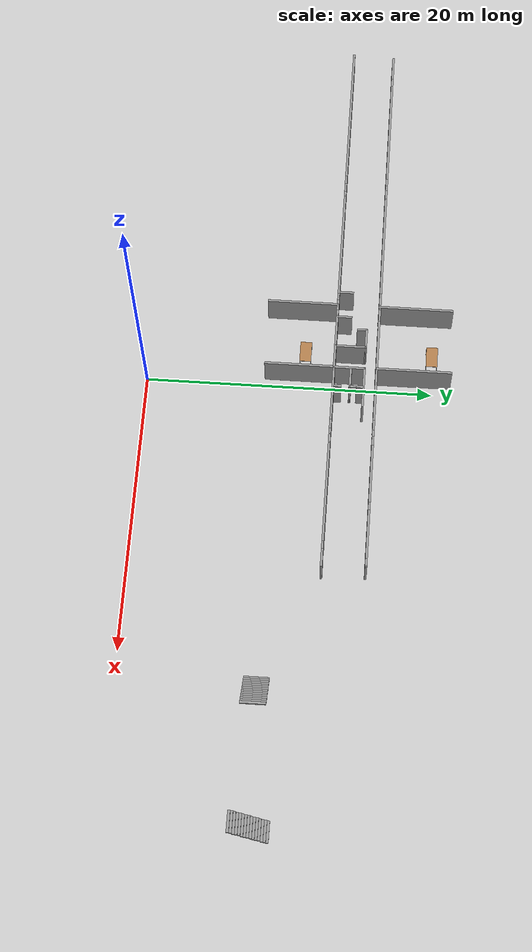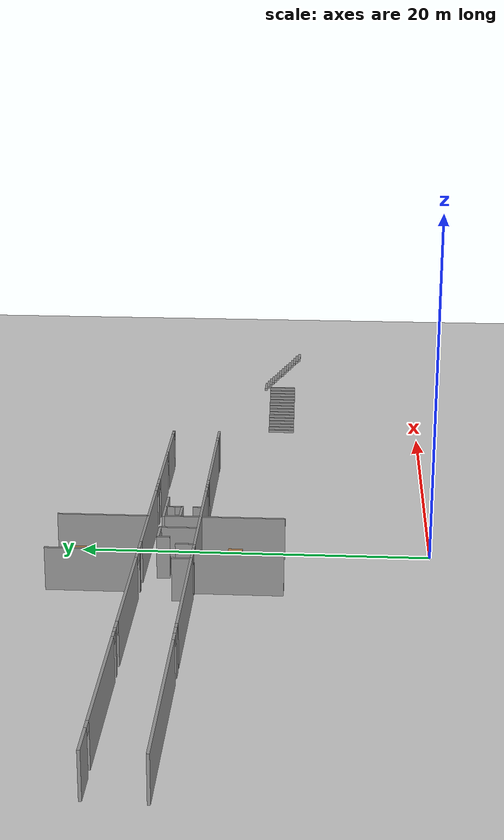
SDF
<sdf version="1.6">
 <world name="default">
  <model name="ground_plane">
   <static>1</static>
   <link name="link">
    <collision name="collision">
     <geometry><plane><normal>0 0 1</normal><size>100 100</size></plane></geometry>
     <surface><friction><ode><mu>100</mu><mu2>50</mu2></ode></friction></surface>
    </collision>
    <visual name="visual">
     <cast_shadows>0</cast_shadows>
     <geometry><plane><normal>0 0 1</normal><size>100 100</size></plane></geometry>
     <material>
      <script><uri>file://media/materials/scripts/gazebo.material</uri><name>Gazebo/Grey</name></script>
     </material>
    </visual>
   </link>
  </model>
  <model name="se1f1_fin.sdf">
   <pose>1.23175 -2.73358 0 0 -0 0</pose>
   <link name="Stairs_0">
    <visual name="Stairs_0_Visual_0">
     <pose>20.0688 12.0461 0.083333 0 -0 1.5708</pose>
     <geometry><box><size>1.71709 0.168037 0.166667</size></box></geometry>
     <material>
      <script><uri>file://media/materials/scripts/gazebo.material</uri><name>Gazebo/Grey</name></script>
      <ambient>1 1 1 1</ambient>
     </material>
     <meta><layer>0</layer></meta>
    </visual>
    <collision name="Stairs_0_Collision_0">
     <geometry><box><size>1.71709 0.168037 0.166667</size></box></geometry>
     <pose>20.0688 12.0461 0.083333 0 -0 1.5708</pose>
    </collision>
    <visual name="Stairs_0_Visual_1">
     <pose>20.2369 12.0461 0.25 0 -0 1.5708</pose>
     <geometry><box><size>1.71709 0.168037 0.166667</size></box></geometry>
     <material>
      <script><uri>file://media/materials/scripts/gazebo.material</uri><name>Gazebo/Grey</name></script>
      <ambient>1 1 1 1</ambient>
     </material>
     <meta><layer>0</layer></meta>
    </visual>
    <collision name="Stairs_0_Collision_1">
     <geometry><box><size>1.71709 0.168037 0.166667</size></box></geometry>
     <pose>20.2369 12.0461 0.25 0 -0 1.5708</pose>
    </collision>
    <visual name="Stairs_0_Visual_2">
     <pose>20.4049 12.0461 0.416667 0 -0 1.5708</pose>
     <geometry><box><size>1.71709 0.168037 0.166667</size></box></geometry>
     <material>
      <script><uri>file://media/materials/scripts/gazebo.material</uri><name>Gazebo/Grey</name></script>
      <ambient>1 1 1 1</ambient>
     </material>
     <meta><layer>0</layer></meta>
    </visual>
    <collision name="Stairs_0_Collision_2">
     <geometry><box><size>1.71709 0.168037 0.166667</size></box></geometry>
     <pose>20.4049 12.0461 0.416667 0 -0 1.5708</pose>
    </collision>
    <visual name="Stairs_0_Visual_3">
     <pose>20.5729 12.0461 0.583333 0 -0 1.5708</pose>
     <geometry><box><size>1.71709 0.168037 0.166667</size></box></geometry>
     <material>
      <script><uri>file://media/materials/scripts/gazebo.material</uri><name>Gazebo/Grey</name></script>
      <ambient>1 1 1 1</ambient>
     </material>
     <meta><layer>0</layer></meta>
    </visual>
    <collision name="Stairs_0_Collision_3">
     <geometry><box><size>1.71709 0.168037 0.166667</size></box></geometry>
     <pose>20.5729 12.0461 0.583333 0 -0 1.5708</pose>
    </collision>
    <visual name="Stairs_0_Visual_4">
     <pose>20.741 12.0461 0.75 0 -0 1.5708</pose>
     <geometry><box><size>1.71709 0.168037 0.166667</size></box></geometry>
     <material>
      <script><uri>file://media/materials/scripts/gazebo.material</uri><name>Gazebo/Grey</name></script>
      <ambient>1 1 1 1</ambient>
     </material>
     <meta><layer>0</layer></meta>
    </visual>
    <collision name="Stairs_0_Collision_4">
     <geometry><box><size>1.71709 0.168037 0.166667</size></box></geometry>
     <pose>20.741 12.0461 0.75 0 -0 1.5708</pose>
    </collision>
    <visual name="Stairs_0_Visual_5">
     <pose>20.909 12.0461 0.916667 0 -0 1.5708</pose>
     <geometry><box><size>1.71709 0.168037 0.166667</size></box></geometry>
     <material>
      <script><uri>file://media/materials/scripts/gazebo.material</uri><name>Gazebo/Grey</name></script>
      <ambient>1 1 1 1</ambient>
     </material>
     <meta><layer>0</layer></meta>
    </visual>
    <collision name="Stairs_0_Collision_5">
     <geometry><box><size>1.71709 0.168037 0.166667</size></box></geometry>
     <pose>20.909 12.0461 0.916667 0 -0 1.5708</pose>
    </collision>
    <visual name="Stairs_0_Visual_6">
     <pose>21.077 12.0461 1.08333 0 -0 1.5708</pose>
     <geometry><box><size>1.71709 0.168037 0.166667</size></box></geometry>
     <material>
      <script><uri>file://media/materials/scripts/gazebo.material</uri><name>Gazebo/Grey</name></script>
      <ambient>1 1 1 1</ambient>
     </material>
     <meta><layer>0</layer></meta>
    </visual>
    <collision name="Stairs_0_Collision_6">
     <geometry><box><size>1.71709 0.168037 0.166667</size></box></geometry>
     <pose>21.077 12.0461 1.08333 0 -0 1.5708</pose>
    </collision>
    <visual name="Stairs_0_Visual_7">
     <pose>21.2451 12.0461 1.25 0 -0 1.5708</pose>
     <geometry><box><size>1.71709 0.168037 0.166667</size></box></geometry>
     <material>
      <script><uri>file://media/materials/scripts/gazebo.material</uri><name>Gazebo/Grey</name></script>
      <ambient>1 1 1 1</ambient>
     </material>
     <meta><layer>0</layer></meta>
    </visual>
    <collision name="Stairs_0_Collision_7">
     <geometry><box><size>1.71709 0.168037 0.166667</size></box></geometry>
     <pose>21.2451 12.0461 1.25 0 -0 1.5708</pose>
    </collision>
    <visual name="Stairs_0_Visual_8">
     <pose>21.4131 12.0461 1.41667 0 -0 1.5708</pose>
     <geometry><box><size>1.71709 0.168037 0.166667</size></box></geometry>
     <material>
      <script><uri>file://media/materials/scripts/gazebo.material</uri><name>Gazebo/Grey</name></script>
      <ambient>1 1 1 1</ambient>
     </material>
     <meta><layer>0</layer></meta>
    </visual>
    <collision name="Stairs_0_Collision_8">
     <geometry><box><size>1.71709 0.168037 0.166667</size></box></geometry>
     <pose>21.4131 12.0461 1.41667 0 -0 1.5708</pose>
    </collision>
    <visual name="Stairs_0_Visual_9">
     <pose>21.5812 12.0461 1.58333 0 -0 1.5708</pose>
     <geometry><box><size>1.71709 0.168037 0.166667</size></box></geometry>
     <material>
      <script><uri>file://media/materials/scripts/gazebo.material</uri><name>Gazebo/Grey</name></script>
      <ambient>1 1 1 1</ambient>
     </material>
     <meta><layer>0</layer></meta>
    </visual>
    <collision name="Stairs_0_Collision_9">
     <geometry><box><size>1.71709 0.168037 0.166667</size></box></geometry>
     <pose>21.5812 12.0461 1.58333 0 -0 1.5708</pose>
    </collision>
    <visual name="Stairs_0_Visual_10">
     <pose>21.7492 12.0461 1.75 0 -0 1.5708</pose>
     <geometry><box><size>1.71709 0.168037 0.166667</size></box></geometry>
     <material>
      <script><uri>file://media/materials/scripts/gazebo.material</uri><name>Gazebo/Grey</name></script>
      <ambient>1 1 1 1</ambient>
     </material>
     <meta><layer>0</layer></meta>
    </visual>
    <collision name="Stairs_0_Collision_10">
     <geometry><box><size>1.71709 0.168037 0.166667</size></box></geometry>
     <pose>21.7492 12.0461 1.75 0 -0 1.5708</pose>
    </collision>
    <visual name="Stairs_0_Visual_11">
     <pose>21.9172 12.0461 1.91667 0 -0 1.5708</pose>
     <geometry><box><size>1.71709 0.168037 0.166667</size></box></geometry>
     <material>
      <script><uri>file://media/materials/scripts/gazebo.material</uri><name>Gazebo/Grey</name></script>
      <ambient>1 1 1 1</ambient>
     </material>
     <meta><layer>0</layer></meta>
    </visual>
    <collision name="Stairs_0_Collision_11">
     <geometry><box><size>1.71709 0.168037 0.166667</size></box></geometry>
     <pose>21.9172 12.0461 1.91667 0 -0 1.5708</pose>
    </collision>
    <visual name="Stairs_0_Visual_12">
     <pose>22.0853 12.0461 2.08333 0 -0 1.5708</pose>
     <geometry><box><size>1.71709 0.168037 0.166667</size></box></geometry>
     <material>
      <script><uri>file://media/materials/scripts/gazebo.material</uri><name>Gazebo/Grey</name></script>
      <ambient>1 1 1 1</ambient>
     </material>
     <meta><layer>0</layer></meta>
    </visual>
    <collision name="Stairs_0_Collision_12">
     <geometry><box><size>1.71709 0.168037 0.166667</size></box></geometry>
     <pose>22.0853 12.0461 2.08333 0 -0 1.5708</pose>
    </collision>
    <visual name="Stairs_0_Visual_13">
     <pose>22.2533 12.0461 2.25 0 -0 1.5708</pose>
     <geometry><box><size>1.71709 0.168037 0.166667</size></box></geometry>
     <material>
      <script><uri>file://media/materials/scripts/gazebo.material</uri><name>Gazebo/Grey</name></script>
      <ambient>1 1 1 1</ambient>
     </material>
     <meta><layer>0</layer></meta>
    </visual>
    <collision name="Stairs_0_Collision_13">
     <geometry><box><size>1.71709 0.168037 0.166667</size></box></geometry>
     <pose>22.2533 12.0461 2.25 0 -0 1.5708</pose>
    </collision>
    <visual name="Stairs_0_Visual_14">
     <pose>22.4213 12.0461 2.41667 0 -0 1.5708</pose>
     <geometry><box><size>1.71709 0.168037 0.166667</size></box></geometry>
     <material>
      <script><uri>file://media/materials/scripts/gazebo.material</uri><name>Gazebo/Grey</name></script>
      <ambient>1 1 1 1</ambient>
     </material>
     <meta><layer>0</layer></meta>
    </visual>
    <collision name="Stairs_0_Collision_14">
     <geometry><box><size>1.71709 0.168037 0.166667</size></box></geometry>
     <pose>22.4213 12.0461 2.41667 0 -0 1.5708</pose>
    </collision>
   </link>
   <link name="Stairs_1">
    <visual name="Stairs_1_Visual_0">
     <pose>30.095 13.5256 0.083333 0 -0 0</pose>
     <geometry><box><size>1.41976 0.173867 0.166667</size></box></geometry>
     <material>
      <script><uri>file://media/materials/scripts/gazebo.material</uri><name>Gazebo/Grey</name></script>
      <ambient>1 1 1 1</ambient>
     </material>
     <meta><layer>0</layer></meta>
    </visual>
    <collision name="Stairs_1_Collision_0">
     <geometry><box><size>1.41976 0.173867 0.166667</size></box></geometry>
     <pose>30.095 13.5256 0.083333 0 -0 0</pose>
    </collision>
    <visual name="Stairs_1_Visual_1">
     <pose>30.095 13.3517 0.25 0 -0 0</pose>
     <geometry><box><size>1.41976 0.173867 0.166667</size></box></geometry>
     <material>
      <script><uri>file://media/materials/scripts/gazebo.material</uri><name>Gazebo/Grey</name></script>
      <ambient>1 1 1 1</ambient>
     </material>
     <meta><layer>0</layer></meta>
    </visual>
    <collision name="Stairs_1_Collision_1">
     <geometry><box><size>1.41976 0.173867 0.166667</size></box></geometry>
     <pose>30.095 13.3517 0.25 0 -0 0</pose>
    </collision>
    <visual name="Stairs_1_Visual_2">
     <pose>30.095 13.1778 0.416667 0 -0 0</pose>
     <geometry><box><size>1.41976 0.173867 0.166667</size></box></geometry>
     <material>
      <script><uri>file://media/materials/scripts/gazebo.material</uri><name>Gazebo/Grey</name></script>
      <ambient>1 1 1 1</ambient>
     </material>
     <meta><layer>0</layer></meta>
    </visual>
    <collision name="Stairs_1_Collision_2">
     <geometry><box><size>1.41976 0.173867 0.166667</size></box></geometry>
     <pose>30.095 13.1778 0.416667 0 -0 0</pose>
    </collision>
    <visual name="Stairs_1_Visual_3">
     <pose>30.095 13.004 0.583333 0 -0 0</pose>
     <geometry><box><size>1.41976 0.173867 0.166667</size></box></geometry>
     <material>
      <script><uri>file://media/materials/scripts/gazebo.material</uri><name>Gazebo/Grey</name></script>
      <ambient>1 1 1 1</ambient>
     </material>
     <meta><layer>0</layer></meta>
    </visual>
    <collision name="Stairs_1_Collision_3">
     <geometry><box><size>1.41976 0.173867 0.166667</size></box></geometry>
     <pose>30.095 13.004 0.583333 0 -0 0</pose>
    </collision>
    <visual name="Stairs_1_Visual_4">
     <pose>30.095 12.8301 0.75 0 -0 0</pose>
     <geometry><box><size>1.41976 0.173867 0.166667</size></box></geometry>
     <material>
      <script><uri>file://media/materials/scripts/gazebo.material</uri><name>Gazebo/Grey</name></script>
      <ambient>1 1 1 1</ambient>
     </material>
     <meta><layer>0</layer></meta>
    </visual>
    <collision name="Stairs_1_Collision_4">
     <geometry><box><size>1.41976 0.173867 0.166667</size></box></geometry>
     <pose>30.095 12.8301 0.75 0 -0 0</pose>
    </collision>
    <visual name="Stairs_1_Visual_5">
     <pose>30.095 12.6562 0.916667 0 -0 0</pose>
     <geometry><box><size>1.41976 0.173867 0.166667</size></box></geometry>
     <material>
      <script><uri>file://media/materials/scripts/gazebo.material</uri><name>Gazebo/Grey</name></script>
      <ambient>1 1 1 1</ambient>
     </material>
     <meta><layer>0</layer></meta>
    </visual>
    <collision name="Stairs_1_Collision_5">
     <geometry><box><size>1.41976 0.173867 0.166667</size></box></geometry>
     <pose>30.095 12.6562 0.916667 0 -0 0</pose>
    </collision>
    <visual name="Stairs_1_Visual_6">
     <pose>30.095 12.4824 1.08333 0 -0 0</pose>
     <geometry><box><size>1.41976 0.173867 0.166667</size></box></geometry>
     <material>
      <script><uri>file://media/materials/scripts/gazebo.material</uri><name>Gazebo/Grey</name></script>
      <ambient>1 1 1 1</ambient>
     </material>
     <meta><layer>0</layer></meta>
    </visual>
    <collision name="Stairs_1_Collision_6">
     <geometry><box><size>1.41976 0.173867 0.166667</size></box></geometry>
     <pose>30.095 12.4824 1.08333 0 -0 0</pose>
    </collision>
    <visual name="Stairs_1_Visual_7">
     <pose>30.095 12.3085 1.25 0 -0 0</pose>
     <geometry><box><size>1.41976 0.173867 0.166667</size></box></geometry>
     <material>
      <script><uri>file://media/materials/scripts/gazebo.material</uri><name>Gazebo/Grey</name></script>
      <ambient>1 1 1 1</ambient>
     </material>
     <meta><layer>0</layer></meta>
    </visual>
    <collision name="Stairs_1_Collision_7">
     <geometry><box><size>1.41976 0.173867 0.166667</size></box></geometry>
     <pose>30.095 12.3085 1.25 0 -0 0</pose>
    </collision>
    <visual name="Stairs_1_Visual_8">
     <pose>30.095 12.1346 1.41667 0 -0 0</pose>
     <geometry><box><size>1.41976 0.173867 0.166667</size></box></geometry>
     <material>
      <script><uri>file://media/materials/scripts/gazebo.material</uri><name>Gazebo/Grey</name></script>
      <ambient>1 1 1 1</ambient>
     </material>
     <meta><layer>0</layer></meta>
    </visual>
    <collision name="Stairs_1_Collision_8">
     <geometry><box><size>1.41976 0.173867 0.166667</size></box></geometry>
     <pose>30.095 12.1346 1.41667 0 -0 0</pose>
    </collision>
    <visual name="Stairs_1_Visual_9">
     <pose>30.095 11.9608 1.58333 0 -0 0</pose>
     <geometry><box><size>1.41976 0.173867 0.166667</size></box></geometry>
     <material>
      <script><uri>file://media/materials/scripts/gazebo.material</uri><name>Gazebo/Grey</name></script>
      <ambient>1 1 1 1</ambient>
     </material>
     <meta><layer>0</layer></meta>
    </visual>
    <collision name="Stairs_1_Collision_9">
     <geometry><box><size>1.41976 0.173867 0.166667</size></box></geometry>
     <pose>30.095 11.9608 1.58333 0 -0 0</pose>
    </collision>
    <visual name="Stairs_1_Visual_10">
     <pose>30.095 11.7869 1.75 0 -0 0</pose>
     <geometry><box><size>1.41976 0.173867 0.166667</size></box></geometry>
     <material>
      <script><uri>file://media/materials/scripts/gazebo.material</uri><name>Gazebo/Grey</name></script>
      <ambient>1 1 1 1</ambient>
     </material>
     <meta><layer>0</layer></meta>
    </visual>
    <collision name="Stairs_1_Collision_10">
     <geometry><box><size>1.41976 0.173867 0.166667</size></box></geometry>
     <pose>30.095 11.7869 1.75 0 -0 0</pose>
    </collision>
    <visual name="Stairs_1_Visual_11">
     <pose>30.095 11.613 1.91667 0 -0 0</pose>
     <geometry><box><size>1.41976 0.173867 0.166667</size></box></geometry>
     <material>
      <script><uri>file://media/materials/scripts/gazebo.material</uri><name>Gazebo/Grey</name></script>
      <ambient>1 1 1 1</ambient>
     </material>
     <meta><layer>0</layer></meta>
    </visual>
    <collision name="Stairs_1_Collision_11">
     <geometry><box><size>1.41976 0.173867 0.166667</size></box></geometry>
     <pose>30.095 11.613 1.91667 0 -0 0</pose>
    </collision>
    <visual name="Stairs_1_Visual_12">
     <pose>30.095 11.4391 2.08333 0 -0 0</pose>
     <geometry><box><size>1.41976 0.173867 0.166667</size></box></geometry>
     <material>
      <script><uri>file://media/materials/scripts/gazebo.material</uri><name>Gazebo/Grey</name></script>
      <ambient>1 1 1 1</ambient>
     </material>
     <meta><layer>0</layer></meta>
    </visual>
    <collision name="Stairs_1_Collision_12">
     <geometry><box><size>1.41976 0.173867 0.166667</size></box></geometry>
     <pose>30.095 11.4391 2.08333 0 -0 0</pose>
    </collision>
    <visual name="Stairs_1_Visual_13">
     <pose>30.095 11.2653 2.25 0 -0 0</pose>
     <geometry><box><size>1.41976 0.173867 0.166667</size></box></geometry>
     <material>
      <script><uri>file://media/materials/scripts/gazebo.material</uri><name>Gazebo/Grey</name></script>
      <ambient>1 1 1 1</ambient>
     </material>
     <meta><layer>0</layer></meta>
    </visual>
    <collision name="Stairs_1_Collision_13">
     <geometry><box><size>1.41976 0.173867 0.166667</size></box></geometry>
     <pose>30.095 11.2653 2.25 0 -0 0</pose>
    </collision>
    <visual name="Stairs_1_Visual_14">
     <pose>30.095 11.0914 2.41667 0 -0 0</pose>
     <geometry><box><size>1.41976 0.173867 0.166667</size></box></geometry>
     <material>
      <script><uri>file://media/materials/scripts/gazebo.material</uri><name>Gazebo/Grey</name></script>
      <ambient>1 1 1 1</ambient>
     </material>
     <meta><layer>0</layer></meta>
    </visual>
    <collision name="Stairs_1_Collision_14">
     <geometry><box><size>1.41976 0.173867 0.166667</size></box></geometry>
     <pose>30.095 11.0914 2.41667 0 -0 0</pose>
    </collision>
   </link>
   <link name="Wall_103">
    <collision name="Wall_103_Collision">
     <geometry><box><size>5 0.15 2.5</size></box></geometry>
     <pose>0 0 1.25 0 -0 0</pose>
    </collision>
    <visual name="Wall_103_Visual">
     <pose>0 0 1.25 0 -0 0</pose>
     <geometry><box><size>5 0.15 2.5</size></box></geometry>
     <material>
      <script><uri>file://media/materials/scripts/gazebo.material</uri><name>Gazebo/Grey</name></script>
      <ambient>1 1 1 1</ambient>
     </material>
     <meta><layer>0</layer></meta>
    </visual>
    <pose>-6.75659 13.3935 0 0 -0 1.5708</pose>
   </link>
   <link name="Wall_106">
    <collision name="Wall_106_Collision">
     <geometry><box><size>4.75 0.15 2.5</size></box></geometry>
     <pose>0 0 1.25 0 -0 0</pose>
    </collision>
    <visual name="Wall_106_Visual">
     <pose>0 0 1.25 0 -0 0</pose>
     <geometry><box><size>4.75 0.15 2.5</size></box></geometry>
     <material>
      <script><uri>file://media/materials/scripts/gazebo.material</uri><name>Gazebo/Grey</name></script>
      <ambient>1 1 1 1</ambient>
     </material>
     <meta><layer>0</layer></meta>
    </visual>
    <pose>-1.85938 13.3735 0 0 -0 1.5708</pose>
   </link>
   <link name="Wall_112">
    <pose>-7.6182 18.7939 0 0 -0 0</pose>
    <visual name="Wall_112_Visual_0">
     <pose>-19.4252 0 1.25 0 -0 0</pose>
     <geometry><box><size>1.89964 0.15 2.5</size></box></geometry>
     <material>
      <script><uri>file://media/materials/scripts/gazebo.material</uri><name>Gazebo/Grey</name></script>
      <ambient>1 1 1 1</ambient>
     </material>
     <meta><layer>0</layer></meta>
    </visual>
    <collision name="Wall_112_Collision_0">
     <geometry><box><size>1.89964 0.15 2.5</size></box></geometry>
     <pose>-19.4252 0 1.25 0 -0 0</pose>
    </collision>
    <visual name="Wall_112_Visual_1">
     <pose>-13.7447 0 1.25 0 -0 0</pose>
     <geometry><box><size>8.15111 0.15 2.5</size></box></geometry>
     <material>
      <script><uri>file://media/materials/scripts/gazebo.material</uri><name>Gazebo/Grey</name></script>
      <ambient>1 1 1 1</ambient>
     </material>
     <meta><layer>0</layer></meta>
    </visual>
    <collision name="Wall_112_Collision_1">
     <geometry><box><size>8.15111 0.15 2.5</size></box></geometry>
     <pose>-13.7447 0 1.25 0 -0 0</pose>
    </collision>
    <visual name="Wall_112_Visual_2">
     <pose>-8.90866 0 1.25 0 -0 0</pose>
     <geometry><box><size>0.38552 0.15 2.5</size></box></geometry>
     <material>
      <script><uri>file://media/materials/scripts/gazebo.material</uri><name>Gazebo/Grey</name></script>
      <ambient>1 1 1 1</ambient>
     </material>
     <meta><layer>0</layer></meta>
    </visual>
    <collision name="Wall_112_Collision_2">
     <geometry><box><size>0.38552 0.15 2.5</size></box></geometry>
     <pose>-8.90866 0 1.25 0 -0 0</pose>
    </collision>
    <visual name="Wall_112_Visual_3">
     <pose>-4.07266 0 1.25 0 -0 0</pose>
     <geometry><box><size>7.83629 0.15 2.5</size></box></geometry>
     <material>
      <script><uri>file://media/materials/scripts/gazebo.material</uri><name>Gazebo/Grey</name></script>
      <ambient>1 1 1 1</ambient>
     </material>
     <meta><layer>0</layer></meta>
    </visual>
    <collision name="Wall_112_Collision_3">
     <geometry><box><size>7.83629 0.15 2.5</size></box></geometry>
     <pose>-4.07266 0 1.25 0 -0 0</pose>
    </collision>
    <visual name="Wall_112_Visual_4">
     <pose>0.933869 0 1.25 0 -0 0</pose>
     <geometry><box><size>0.376774 0.15 2.5</size></box></geometry>
     <material>
      <script><uri>file://media/materials/scripts/gazebo.material</uri><name>Gazebo/Grey</name></script>
      <ambient>1 1 1 1</ambient>
     </material>
     <meta><layer>0</layer></meta>
    </visual>
    <collision name="Wall_112_Collision_4">
     <geometry><box><size>0.376774 0.15 2.5</size></box></geometry>
     <pose>0.933869 0 1.25 0 -0 0</pose>
    </collision>
    <visual name="Wall_112_Visual_5">
     <pose>5.85295 0 1.25 0 -0 0</pose>
     <geometry><box><size>7.66139 0.15 2.5</size></box></geometry>
     <material>
      <script><uri>file://media/materials/scripts/gazebo.material</uri><name>Gazebo/Grey</name></script>
      <ambient>1 1 1 1</ambient>
     </material>
     <meta><layer>0</layer></meta>
    </visual>
    <collision name="Wall_112_Collision_5">
     <geometry><box><size>7.66139 0.15 2.5</size></box></geometry>
     <pose>5.85295 0 1.25 0 -0 0</pose>
    </collision>
    <visual name="Wall_112_Visual_6">
     <pose>10.654 0 1.25 0 -0 0</pose>
     <geometry><box><size>0.45548 0.15 2.5</size></box></geometry>
     <material>
      <script><uri>file://media/materials/scripts/gazebo.material</uri><name>Gazebo/Grey</name></script>
      <ambient>1 1 1 1</ambient>
     </material>
     <meta><layer>0</layer></meta>
    </visual>
    <collision name="Wall_112_Collision_6">
     <geometry><box><size>0.45548 0.15 2.5</size></box></geometry>
     <pose>10.654 0 1.25 0 -0 0</pose>
    </collision>
    <visual name="Wall_112_Visual_7">
     <pose>13.6666 0 1.25 0 -0 0</pose>
     <geometry><box><size>4.18961 0.15 2.5</size></box></geometry>
     <material>
      <script><uri>file://media/materials/scripts/gazebo.material</uri><name>Gazebo/Grey</name></script>
      <ambient>1 1 1 1</ambient>
     </material>
     <meta><layer>0</layer></meta>
    </visual>
    <collision name="Wall_112_Collision_7">
     <geometry><box><size>4.18961 0.15 2.5</size></box></geometry>
     <pose>13.6666 0 1.25 0 -0 0</pose>
    </collision>
    <visual name="Wall_112_Visual_8">
     <pose>18.0435 0 1.25 0 -0 0</pose>
     <geometry><box><size>3.46377 0.15 2.5</size></box></geometry>
     <material>
      <script><uri>file://media/materials/scripts/gazebo.material</uri><name>Gazebo/Grey</name></script>
      <ambient>1 1 1 1</ambient>
     </material>
     <meta><layer>0</layer></meta>
    </visual>
    <collision name="Wall_112_Collision_8">
     <geometry><box><size>3.46377 0.15 2.5</size></box></geometry>
     <pose>18.0435 0 1.25 0 -0 0</pose>
    </collision>
    <visual name="Wall_112_Visual_9">
     <pose>20.3328 0 1.25 0 -0 0</pose>
     <geometry><box><size>0.084374 0.15 2.5</size></box></geometry>
     <material>
      <script><uri>file://media/materials/scripts/gazebo.material</uri><name>Gazebo/Grey</name></script>
      <ambient>1 1 1 1</ambient>
     </material>
     <meta><layer>0</layer></meta>
    </visual>
    <collision name="Wall_112_Collision_9">
     <geometry><box><size>0.084374 0.15 2.5</size></box></geometry>
     <pose>20.3328 0 1.25 0 -0 0</pose>
    </collision>
    <visual name="Wall_112_Visual_10">
     <pose>-18.1478 0 2.25 0 -0 0</pose>
     <geometry><box><size>0.655139 0.15 0.5</size></box></geometry>
     <material>
      <script><uri>file://media/materials/scripts/gazebo.material</uri><name>Gazebo/Grey</name></script>
      <ambient>1 1 1 1</ambient>
     </material>
     <meta><layer>0</layer></meta>
    </visual>
    <collision name="Wall_112_Collision_10">
     <geometry><box><size>0.655139 0.15 0.5</size></box></geometry>
     <pose>-18.1478 0 2.25 0 -0 0</pose>
    </collision>
    <visual name="Wall_112_Visual_11">
     <pose>-9.38527 0 2.25 0 -0 0</pose>
     <geometry><box><size>0.567689 0.15 0.5</size></box></geometry>
     <material>
      <script><uri>file://media/materials/scripts/gazebo.material</uri><name>Gazebo/Grey</name></script>
      <ambient>1 1 1 1</ambient>
     </material>
     <meta><layer>0</layer></meta>
    </visual>
    <collision name="Wall_112_Collision_11">
     <geometry><box><size>0.567689 0.15 0.5</size></box></geometry>
     <pose>-9.38527 0 2.25 0 -0 0</pose>
    </collision>
    <visual name="Wall_112_Visual_12">
     <pose>-8.35335 0 2.25 0 -0 0</pose>
     <geometry><box><size>0.725099 0.15 0.5</size></box></geometry>
     <material>
      <script><uri>file://media/materials/scripts/gazebo.material</uri><name>Gazebo/Grey</name></script>
      <ambient>1 1 1 1</ambient>
     </material>
     <meta><layer>0</layer></meta>
    </visual>
    <collision name="Wall_112_Collision_12">
     <geometry><box><size>0.725099 0.15 0.5</size></box></geometry>
     <pose>-8.35335 0 2.25 0 -0 0</pose>
    </collision>
    <visual name="Wall_112_Visual_13">
     <pose>0.295482 0 2.25 0 -0 0</pose>
     <geometry><box><size>0.9 0.15 0.5</size></box></geometry>
     <material>
      <script><uri>file://media/materials/scripts/gazebo.material</uri><name>Gazebo/Grey</name></script>
      <ambient>1 1 1 1</ambient>
     </material>
     <meta><layer>0</layer></meta>
    </visual>
    <collision name="Wall_112_Collision_13">
     <geometry><box><size>0.9 0.15 0.5</size></box></geometry>
     <pose>0.295482 0 2.25 0 -0 0</pose>
    </collision>
    <visual name="Wall_112_Visual_14">
     <pose>1.57226 0 2.25 0 -0 0</pose>
     <geometry><box><size>0.9 0.15 0.5</size></box></geometry>
     <material>
      <script><uri>file://media/materials/scripts/gazebo.material</uri><name>Gazebo/Grey</name></script>
      <ambient>1 1 1 1</ambient>
     </material>
     <meta><layer>0</layer></meta>
    </visual>
    <collision name="Wall_112_Collision_14">
     <geometry><box><size>0.9 0.15 0.5</size></box></geometry>
     <pose>1.57226 0 2.25 0 -0 0</pose>
    </collision>
    <visual name="Wall_112_Visual_15">
     <pose>10.0549 0 2.25 0 -0 0</pose>
     <geometry><box><size>0.742589 0.15 0.5</size></box></geometry>
     <material>
      <script><uri>file://media/materials/scripts/gazebo.material</uri><name>Gazebo/Grey</name></script>
      <ambient>1 1 1 1</ambient>
     </material>
     <meta><layer>0</layer></meta>
    </visual>
    <collision name="Wall_112_Collision_15">
     <geometry><box><size>0.742589 0.15 0.5</size></box></geometry>
     <pose>10.0549 0 2.25 0 -0 0</pose>
    </collision>
    <visual name="Wall_112_Visual_16">
     <pose>11.2268 0 2.25 0 -0 0</pose>
     <geometry><box><size>0.690119 0.15 0.5</size></box></geometry>
     <material>
      <script><uri>file://media/materials/scripts/gazebo.material</uri><name>Gazebo/Grey</name></script>
      <ambient>1 1 1 1</ambient>
     </material>
     <meta><layer>0</layer></meta>
    </visual>
    <collision name="Wall_112_Collision_16">
     <geometry><box><size>0.690119 0.15 0.5</size></box></geometry>
     <pose>11.2268 0 2.25 0 -0 0</pose>
    </collision>
    <visual name="Wall_112_Visual_17">
     <pose>16.0365 0 2.25 0 -0 0</pose>
     <geometry><box><size>0.550199 0.15 0.5</size></box></geometry>
     <material>
      <script><uri>file://media/materials/scripts/gazebo.material</uri><name>Gazebo/Grey</name></script>
      <ambient>1 1 1 1</ambient>
     </material>
     <meta><layer>0</layer></meta>
    </visual>
    <collision name="Wall_112_Collision_17">
     <geometry><box><size>0.550199 0.15 0.5</size></box></geometry>
     <pose>16.0365 0 2.25 0 -0 0</pose>
    </collision>
    <visual name="Wall_112_Visual_18">
     <pose>20.033 0 2.25 0 -0 0</pose>
     <geometry><box><size>0.515219 0.15 0.5</size></box></geometry>
     <material>
      <script><uri>file://media/materials/scripts/gazebo.material</uri><name>Gazebo/Grey</name></script>
      <ambient>1 1 1 1</ambient>
     </material>
     <meta><layer>0</layer></meta>
    </visual>
    <collision name="Wall_112_Collision_18">
     <geometry><box><size>0.515219 0.15 0.5</size></box></geometry>
     <pose>20.033 0 2.25 0 -0 0</pose>
    </collision>
   </link>
   <link name="Wall_122">
    <collision name="Wall_122_Collision">
     <geometry><box><size>5.25 0.15 2.5</size></box></geometry>
     <pose>0 0 1.25 0 -0 0</pose>
    </collision>
    <visual name="Wall_122_Visual">
     <pose>0 0 1.25 0 -0 0</pose>
     <geometry><box><size>5.25 0.15 2.5</size></box></geometry>
     <material>
      <script><uri>file://media/materials/scripts/gazebo.material</uri><name>Gazebo/Grey</name></script>
      <ambient>1 1 1 1</ambient>
     </material>
     <meta><layer>0</layer></meta>
    </visual>
    <pose>-6.72817 21.3338 0 0 -0 1.5708</pose>
   </link>
   <link name="Wall_124">
    <collision name="Wall_124_Collision">
     <geometry><box><size>5.25 0.15 2.5</size></box></geometry>
     <pose>0 0 1.25 0 -0 0</pose>
    </collision>
    <visual name="Wall_124_Visual">
     <pose>0 0 1.25 0 -0 0</pose>
     <geometry><box><size>5.25 0.15 2.5</size></box></geometry>
     <material>
      <script><uri>file://media/materials/scripts/gazebo.material</uri><name>Gazebo/Grey</name></script>
      <ambient>1 1 1 1</ambient>
     </material>
     <meta><layer>0</layer></meta>
    </visual>
    <pose>-1.8808 21.3941 0 0 -0 1.5708</pose>
   </link>
   <link name="Wall_21">
    <pose>-7.59191 15.8321 0 0 -0 0</pose>
    <visual name="Wall_21_Visual_0">
     <pose>-15.16 0 1.25 0 -0 0</pose>
     <geometry><box><size>10.68 0.15 2.5</size></box></geometry>
     <material>
      <script><uri>file://media/materials/scripts/gazebo.material</uri><name>Gazebo/Grey</name></script>
      <ambient>1 1 1 1</ambient>
     </material>
     <meta><layer>0</layer></meta>
    </visual>
    <collision name="Wall_21_Collision_0">
     <geometry><box><size>10.68 0.15 2.5</size></box></geometry>
     <pose>-15.16 0 1.25 0 -0 0</pose>
    </collision>
    <visual name="Wall_21_Visual_1">
     <pose>-8.81042 0 1.25 0 -0 0</pose>
     <geometry><box><size>0.642534 0.15 2.5</size></box></geometry>
     <material>
      <script><uri>file://media/materials/scripts/gazebo.material</uri><name>Gazebo/Grey</name></script>
      <ambient>1 1 1 1</ambient>
     </material>
     <meta><layer>0</layer></meta>
    </visual>
    <collision name="Wall_21_Collision_1">
     <geometry><box><size>0.642534 0.15 2.5</size></box></geometry>
     <pose>-8.81042 0 1.25 0 -0 0</pose>
    </collision>
    <visual name="Wall_21_Visual_2">
     <pose>-4.06184 0 1.25 0 -0 0</pose>
     <geometry><box><size>8.03762 0.15 2.5</size></box></geometry>
     <material>
      <script><uri>file://media/materials/scripts/gazebo.material</uri><name>Gazebo/Grey</name></script>
      <ambient>1 1 1 1</ambient>
     </material>
     <meta><layer>0</layer></meta>
    </visual>
    <collision name="Wall_21_Collision_2">
     <geometry><box><size>8.03762 0.15 2.5</size></box></geometry>
     <pose>-4.06184 0 1.25 0 -0 0</pose>
    </collision>
    <visual name="Wall_21_Visual_3">
     <pose>0.87956 0 1.25 0 -0 0</pose>
     <geometry><box><size>0.771078 0.15 2.5</size></box></geometry>
     <material>
      <script><uri>file://media/materials/scripts/gazebo.material</uri><name>Gazebo/Grey</name></script>
      <ambient>1 1 1 1</ambient>
     </material>
     <meta><layer>0</layer></meta>
    </visual>
    <collision name="Wall_21_Collision_3">
     <geometry><box><size>0.771078 0.15 2.5</size></box></geometry>
     <pose>0.87956 0 1.25 0 -0 0</pose>
    </collision>
    <visual name="Wall_21_Visual_4">
     <pose>5.71888 0 1.25 0 -0 0</pose>
     <geometry><box><size>8.0603 0.15 2.5</size></box></geometry>
     <material>
      <script><uri>file://media/materials/scripts/gazebo.material</uri><name>Gazebo/Grey</name></script>
      <ambient>1 1 1 1</ambient>
     </material>
     <meta><layer>0</layer></meta>
    </visual>
    <collision name="Wall_21_Collision_4">
     <geometry><box><size>8.0603 0.15 2.5</size></box></geometry>
     <pose>5.71888 0 1.25 0 -0 0</pose>
    </collision>
    <visual name="Wall_21_Visual_5">
     <pose>10.6433 0 1.25 0 -0 0</pose>
     <geometry><box><size>0.427032 0.15 2.5</size></box></geometry>
     <material>
      <script><uri>file://media/materials/scripts/gazebo.material</uri><name>Gazebo/Grey</name></script>
      <ambient>1 1 1 1</ambient>
     </material>
     <meta><layer>0</layer></meta>
    </visual>
    <collision name="Wall_21_Collision_5">
     <geometry><box><size>0.427032 0.15 2.5</size></box></geometry>
     <pose>10.6433 0 1.25 0 -0 0</pose>
    </collision>
    <visual name="Wall_21_Visual_6">
     <pose>15.1074 0 1.25 0 -0 0</pose>
     <geometry><box><size>7.18509 0.15 2.5</size></box></geometry>
     <material>
      <script><uri>file://media/materials/scripts/gazebo.material</uri><name>Gazebo/Grey</name></script>
      <ambient>1 1 1 1</ambient>
     </material>
     <meta><layer>0</layer></meta>
    </visual>
    <collision name="Wall_21_Collision_6">
     <geometry><box><size>7.18509 0.15 2.5</size></box></geometry>
     <pose>15.1074 0 1.25 0 -0 0</pose>
    </collision>
    <visual name="Wall_21_Visual_7">
     <pose>19.8602 0 1.25 0 -0 0</pose>
     <geometry><box><size>1.27959 0.15 2.5</size></box></geometry>
     <material>
      <script><uri>file://media/materials/scripts/gazebo.material</uri><name>Gazebo/Grey</name></script>
      <ambient>1 1 1 1</ambient>
     </material>
     <meta><layer>0</layer></meta>
    </visual>
    <collision name="Wall_21_Collision_7">
     <geometry><box><size>1.27959 0.15 2.5</size></box></geometry>
     <pose>19.8602 0 1.25 0 -0 0</pose>
    </collision>
    <visual name="Wall_21_Visual_8">
     <pose>-9.47583 0 2.25 0 -0 0</pose>
     <geometry><box><size>0.68828 0.15 0.5</size></box></geometry>
     <material>
      <script><uri>file://media/materials/scripts/gazebo.material</uri><name>Gazebo/Grey</name></script>
      <ambient>1 1 1 1</ambient>
     </material>
     <meta><layer>0</layer></meta>
    </visual>
    <collision name="Wall_21_Collision_8">
     <geometry><box><size>0.68828 0.15 0.5</size></box></geometry>
     <pose>-9.47583 0 2.25 0 -0 0</pose>
    </collision>
    <visual name="Wall_21_Visual_9">
     <pose>-8.2849 0 2.25 0 -0 0</pose>
     <geometry><box><size>0.408507 0.15 0.5</size></box></geometry>
     <material>
      <script><uri>file://media/materials/scripts/gazebo.material</uri><name>Gazebo/Grey</name></script>
      <ambient>1 1 1 1</ambient>
     </material>
     <meta><layer>0</layer></meta>
    </visual>
    <collision name="Wall_21_Collision_9">
     <geometry><box><size>0.408507 0.15 0.5</size></box></geometry>
     <pose>-8.2849 0 2.25 0 -0 0</pose>
    </collision>
    <visual name="Wall_21_Visual_10">
     <pose>0.225495 0 2.25 0 -0 0</pose>
     <geometry><box><size>0.537051 0.15 0.5</size></box></geometry>
     <material>
      <script><uri>file://media/materials/scripts/gazebo.material</uri><name>Gazebo/Grey</name></script>
      <ambient>1 1 1 1</ambient>
     </material>
     <meta><layer>0</layer></meta>
    </visual>
    <collision name="Wall_21_Collision_10">
     <geometry><box><size>0.537051 0.15 0.5</size></box></geometry>
     <pose>0.225495 0 2.25 0 -0 0</pose>
    </collision>
    <visual name="Wall_21_Visual_11">
     <pose>1.47691 0 2.25 0 -0 0</pose>
     <geometry><box><size>0.423629 0.15 0.5</size></box></geometry>
     <material>
      <script><uri>file://media/materials/scripts/gazebo.material</uri><name>Gazebo/Grey</name></script>
      <ambient>1 1 1 1</ambient>
     </material>
     <meta><layer>0</layer></meta>
    </visual>
    <collision name="Wall_21_Collision_11">
     <geometry><box><size>0.423629 0.15 0.5</size></box></geometry>
     <pose>1.47691 0 2.25 0 -0 0</pose>
    </collision>
    <visual name="Wall_21_Visual_12">
     <pose>10.0894 0 2.25 0 -0 0</pose>
     <geometry><box><size>0.680718 0.15 0.5</size></box></geometry>
     <material>
      <script><uri>file://media/materials/scripts/gazebo.material</uri><name>Gazebo/Grey</name></script>
      <ambient>1 1 1 1</ambient>
     </material>
     <meta><layer>0</layer></meta>
    </visual>
    <collision name="Wall_21_Collision_12">
     <geometry><box><size>0.680718 0.15 0.5</size></box></geometry>
     <pose>10.0894 0 2.25 0 -0 0</pose>
    </collision>
    <visual name="Wall_21_Visual_13">
     <pose>11.1858 0 2.25 0 -0 0</pose>
     <geometry><box><size>0.658034 0.15 0.5</size></box></geometry>
     <material>
      <script><uri>file://media/materials/scripts/gazebo.material</uri><name>Gazebo/Grey</name></script>
      <ambient>1 1 1 1</ambient>
     </material>
     <meta><layer>0</layer></meta>
    </visual>
    <collision name="Wall_21_Collision_13">
     <geometry><box><size>0.658034 0.15 0.5</size></box></geometry>
     <pose>11.1858 0 2.25 0 -0 0</pose>
    </collision>
    <visual name="Wall_21_Visual_14">
     <pose>18.9602 0 2.25 0 -0 0</pose>
     <geometry><box><size>0.5205 0.15 0.5</size></box></geometry>
     <material>
      <script><uri>file://media/materials/scripts/gazebo.material</uri><name>Gazebo/Grey</name></script>
      <ambient>1 1 1 1</ambient>
     </material>
     <meta><layer>0</layer></meta>
    </visual>
    <collision name="Wall_21_Collision_14">
     <geometry><box><size>0.5205 0.15 0.5</size></box></geometry>
     <pose>18.9602 0 2.25 0 -0 0</pose>
    </collision>
   </link>
   <link name="Wall_27">
    <collision name="Wall_27_Collision">
     <geometry><box><size>0.75 0.15 2.5</size></box></geometry>
     <pose>0 0 1.25 0 -0 0</pose>
    </collision>
    <visual name="Wall_27_Visual">
     <pose>0 0 1.25 0 -0 0</pose>
     <geometry><box><size>0.75 0.15 2.5</size></box></geometry>
     <material>
      <script><uri>file://media/materials/scripts/gazebo.material</uri><name>Gazebo/Grey</name></script>
      <ambient>1 1 1 1</ambient>
     </material>
     <meta><layer>0</layer></meta>
    </visual>
    <pose>-4.84059 17.6493 0 0 -0 1.5708</pose>
   </link>
   <link name="Wall_29">
    <collision name="Wall_29_Collision">
     <geometry><box><size>1.5 0.15 2.5</size></box></geometry>
     <pose>0 0 1.25 0 -0 0</pose>
    </collision>
    <visual name="Wall_29_Visual">
     <pose>0 0 1.25 0 -0 0</pose>
     <geometry><box><size>1.5 0.15 2.5</size></box></geometry>
     <material>
      <script><uri>file://media/materials/scripts/gazebo.material</uri><name>Gazebo/Grey</name></script>
      <ambient>1 1 1 1</ambient>
     </material>
     <meta><layer>0</layer></meta>
    </visual>
    <pose>-4.16559 17.9493 0 0 -0 0</pose>
   </link>
   <link name="Wall_30">
    <collision name="Wall_30_Collision">
     <geometry><box><size>2.25 0.15 2.5</size></box></geometry>
     <pose>0 0 1.25 0 -0 0</pose>
    </collision>
    <visual name="Wall_30_Visual">
     <pose>0 0 1.25 0 -0 0</pose>
     <geometry><box><size>2.25 0.15 2.5</size></box></geometry>
     <material>
      <script><uri>file://media/materials/scripts/gazebo.material</uri><name>Gazebo/Grey</name></script>
      <ambient>1 1 1 1</ambient>
     </material>
     <meta><layer>0</layer></meta>
    </visual>
    <pose>-3.49059 16.8993 0 0 0 -1.5708</pose>
   </link>
   <link name="Wall_33">
    <collision name="Wall_33_Collision">
     <geometry><box><size>3 0.15 2.5</size></box></geometry>
     <pose>0 0 1.25 0 -0 0</pose>
    </collision>
    <visual name="Wall_33_Visual">
     <pose>0 0 1.25 0 -0 0</pose>
     <geometry><box><size>3 0.15 2.5</size></box></geometry>
     <material>
      <script><uri>file://media/materials/scripts/gazebo.material</uri><name>Gazebo/Grey</name></script>
      <ambient>1 1 1 1</ambient>
     </material>
     <meta><layer>0</layer></meta>
    </visual>
    <pose>-0.413543 17.9493 0 0 -0 3.14159</pose>
   </link>
   <link name="Wall_34">
    <collision name="Wall_34_Collision">
     <geometry><box><size>2.25 0.15 2.5</size></box></geometry>
     <pose>0 0 1.25 0 -0 0</pose>
    </collision>
    <visual name="Wall_34_Visual">
     <pose>0 0 1.25 0 -0 0</pose>
     <geometry><box><size>2.25 0.15 2.5</size></box></geometry>
     <material>
      <script><uri>file://media/materials/scripts/gazebo.material</uri><name>Gazebo/Grey</name></script>
      <ambient>1 1 1 1</ambient>
     </material>
     <meta><layer>0</layer></meta>
    </visual>
    <pose>-1.83854 16.8993 0 0 0 -1.5708</pose>
   </link>
   <link name="Wall_43">
    <pose>-0.398353 17.4297 0 0 0 -1.5708</pose>
    <visual name="Wall_43_Visual_0">
     <pose>-0.253497 0 1.25 0 -0 0</pose>
     <geometry><box><size>0.493006 0.15 2.5</size></box></geometry>
     <material>
      <script><uri>file://media/materials/scripts/gazebo.material</uri><name>Gazebo/Grey</name></script>
      <ambient>1 1 1 1</ambient>
     </material>
     <meta><layer>0</layer></meta>
    </visual>
    <collision name="Wall_43_Collision_0">
     <geometry><box><size>0.493006 0.15 2.5</size></box></geometry>
     <pose>-0.253497 0 1.25 0 -0 0</pose>
    </collision>
    <visual name="Wall_43_Visual_1">
     <pose>0.450756 0 1.25 0 -0 0</pose>
     <geometry><box><size>0.098488 0.15 2.5</size></box></geometry>
     <material>
      <script><uri>file://media/materials/scripts/gazebo.material</uri><name>Gazebo/Grey</name></script>
      <ambient>1 1 1 1</ambient>
     </material>
     <meta><layer>0</layer></meta>
    </visual>
    <collision name="Wall_43_Collision_1">
     <geometry><box><size>0.098488 0.15 2.5</size></box></geometry>
     <pose>0.450756 0 1.25 0 -0 0</pose>
    </collision>
    <visual name="Wall_43_Visual_2">
     <pose>0.197259 0 2.25 0 -0 0</pose>
     <geometry><box><size>0.408507 0.15 0.5</size></box></geometry>
     <material>
      <script><uri>file://media/materials/scripts/gazebo.material</uri><name>Gazebo/Grey</name></script>
      <ambient>1 1 1 1</ambient>
     </material>
     <meta><layer>0</layer></meta>
    </visual>
    <collision name="Wall_43_Collision_2">
     <geometry><box><size>0.408507 0.15 0.5</size></box></geometry>
     <pose>0.197259 0 2.25 0 -0 0</pose>
    </collision>
   </link>
   <link name="Wall_44">
    <collision name="Wall_44_Collision">
     <geometry><box><size>1.5 0.15 2.5</size></box></geometry>
     <pose>0 0 1.25 0 -0 0</pose>
    </collision>
    <visual name="Wall_44_Visual">
     <pose>0 0 1.25 0 -0 0</pose>
     <geometry><box><size>1.5 0.15 2.5</size></box></geometry>
     <material>
      <script><uri>file://media/materials/scripts/gazebo.material</uri><name>Gazebo/Grey</name></script>
      <ambient>1 1 1 1</ambient>
     </material>
     <meta><layer>0</layer></meta>
    </visual>
    <pose>-1.07335 17.0047 0 0 -0 3.14159</pose>
   </link>
   <link name="Wall_46">
    <collision name="Wall_46_Collision">
     <geometry><box><size>0.5 0.15 2.5</size></box></geometry>
     <pose>0 0 1.25 0 -0 0</pose>
    </collision>
    <visual name="Wall_46_Visual">
     <pose>0 0 1.25 0 -0 0</pose>
     <geometry><box><size>0.5 0.15 2.5</size></box></geometry>
     <material>
      <script><uri>file://media/materials/scripts/gazebo.material</uri><name>Gazebo/Grey</name></script>
      <ambient>1 1 1 1</ambient>
     </material>
     <meta><layer>0</layer></meta>
    </visual>
    <pose>-0.390648 16.1523 0 0 0 -1.5708</pose>
   </link>
   <link name="Wall_58">
    <collision name="Wall_58_Collision">
     <geometry><box><size>1 0.15 2.5</size></box></geometry>
     <pose>0 0 1.25 0 -0 0</pose>
    </collision>
    <visual name="Wall_58_Visual">
     <pose>0 0 1.25 0 -0 0</pose>
     <geometry><box><size>1 0.15 2.5</size></box></geometry>
     <material>
      <script><uri>file://media/materials/scripts/gazebo.material</uri><name>Gazebo/Grey</name></script>
      <ambient>1 1 1 1</ambient>
     </material>
     <meta><layer>0</layer></meta>
    </visual>
    <pose>-7.74461 16.4014 0 0 0 -1.5708</pose>
   </link>
   <link name="Wall_60">
    <collision name="Wall_60_Collision">
     <geometry><box><size>1 0.15 2.5</size></box></geometry>
     <pose>0 0 1.25 0 -0 0</pose>
    </collision>
    <visual name="Wall_60_Visual">
     <pose>0 0 1.25 0 -0 0</pose>
     <geometry><box><size>1 0.15 2.5</size></box></geometry>
     <material>
      <script><uri>file://media/materials/scripts/gazebo.material</uri><name>Gazebo/Grey</name></script>
      <ambient>1 1 1 1</ambient>
     </material>
     <meta><layer>0</layer></meta>
    </visual>
    <pose>-5.78461 16.3814 0 0 0 -1.5708</pose>
   </link>
   <static>1</static>
  </model>
  <model name="table_3">
   <static>1</static>
   <link name="link">
    <collision name="surface">
     <pose>0 0 1 0 -0 0</pose>
     <geometry><box><size>1.5 0.8 0.03</size></box></geometry>
     <surface><friction><ode><mu>0.6</mu><mu2>0.6</mu2></ode></friction></surface>
    </collision>
    <visual name="visual1">
     <pose>0 0 1 0 -0 0</pose>
     <geometry><box><size>1.5 0.8 0.03</size></box></geometry>
     <material>
      <script><uri>file://media/materials/scripts/gazebo.material</uri><name>Gazebo/Wood</name></script>
     </material>
    </visual>
    <collision name="front_left_leg">
     <pose>0.68 0.38 0.5 0 -0 0</pose>
     <geometry><cylinder><radius>0.02</radius><length>1</length></cylinder></geometry>
    </collision>
    <visual name="front_left_leg">
     <pose>0.68 0.38 0.5 0 -0 0</pose>
     <geometry><cylinder><radius>0.02</radius><length>1</length></cylinder></geometry>
     <material>
      <script><uri>file://media/materials/scripts/gazebo.material</uri><name>Gazebo/Grey</name></script>
     </material>
    </visual>
    <collision name="front_right_leg">
     <pose>0.68 -0.38 0.5 0 -0 0</pose>
     <geometry><cylinder><radius>0.02</radius><length>1</length></cylinder></geometry>
    </collision>
    <visual name="front_right_leg">
     <pose>0.68 -0.38 0.5 0 -0 0</pose>
     <geometry><cylinder><radius>0.02</radius><length>1</length></cylinder></geometry>
     <material>
      <script><uri>file://media/materials/scripts/gazebo.material</uri><name>Gazebo/Grey</name></script>
     </material>
    </visual>
    <collision name="back_right_leg">
     <pose>-0.68 -0.38 0.5 0 -0 0</pose>
     <geometry><cylinder><radius>0.02</radius><length>1</length></cylinder></geometry>
    </collision>
    <visual name="back_right_leg">
     <pose>-0.68 -0.38 0.5 0 -0 0</pose>
     <geometry><cylinder><radius>0.02</radius><length>1</length></cylinder></geometry>
     <material>
      <script><uri>file://media/materials/scripts/gazebo.material</uri><name>Gazebo/Grey</name></script>
     </material>
    </visual>
    <collision name="back_left_leg">
     <pose>-0.68 0.38 0.5 0 -0 0</pose>
     <geometry><cylinder><radius>0.02</radius><length>1</length></cylinder></geometry>
    </collision>
    <visual name="back_left_leg">
     <pose>-0.68 0.38 0.5 0 -0 0</pose>
     <geometry><cylinder><radius>0.02</radius><length>1</length></cylinder></geometry>
     <material>
      <script><uri>file://media/materials/scripts/gazebo.material</uri><name>Gazebo/Grey</name></script>
     </material>
    </visual>
   </link>
   <pose>-2.39754 11.0274 0 0 -0 0</pose>
  </model>
  <model name="table_11">
   <static>1</static>
   <link name="link">
    <collision name="surface">
     <pose>0 0 1 0 -0 0</pose>
     <geometry><box><size>1.5 0.8 0.03</size></box></geometry>
     <surface><friction><ode><mu>0.6</mu><mu2>0.6</mu2></ode></friction></surface>
    </collision>
    <visual name="visual1">
     <pose>0 0 1 0 -0 0</pose>
     <geometry><box><size>1.5 0.8 0.03</size></box></geometry>
     <material>
      <script><uri>file://media/materials/scripts/gazebo.material</uri><name>Gazebo/Wood</name></script>
     </material>
    </visual>
    <collision name="front_left_leg">
     <pose>0.68 0.38 0.5 0 -0 0</pose>
     <geometry><cylinder><radius>0.02</radius><length>1</length></cylinder></geometry>
    </collision>
    <visual name="front_left_leg">
     <pose>0.68 0.38 0.5 0 -0 0</pose>
     <geometry><cylinder><radius>0.02</radius><length>1</length></cylinder></geometry>
     <material>
      <script><uri>file://media/materials/scripts/gazebo.material</uri><name>Gazebo/Grey</name></script>
     </material>
    </visual>
    <collision name="front_right_leg">
     <pose>0.68 -0.38 0.5 0 -0 0</pose>
     <geometry><cylinder><radius>0.02</radius><length>1</length></cylinder></geometry>
    </collision>
    <visual name="front_right_leg">
     <pose>0.68 -0.38 0.5 0 -0 0</pose>
     <geometry><cylinder><radius>0.02</radius><length>1</length></cylinder></geometry>
     <material>
      <script><uri>file://media/materials/scripts/gazebo.material</uri><name>Gazebo/Grey</name></script>
     </material>
    </visual>
    <collision name="back_right_leg">
     <pose>-0.68 -0.38 0.5 0 -0 0</pose>
     <geometry><cylinder><radius>0.02</radius><length>1</length></cylinder></geometry>
    </collision>
    <visual name="back_right_leg">
     <pose>-0.68 -0.38 0.5 0 -0 0</pose>
     <geometry><cylinder><radius>0.02</radius><length>1</length></cylinder></geometry>
     <material>
      <script><uri>file://media/materials/scripts/gazebo.material</uri><name>Gazebo/Grey</name></script>
     </material>
    </visual>
    <collision name="back_left_leg">
     <pose>-0.68 0.38 0.5 0 -0 0</pose>
     <geometry><cylinder><radius>0.02</radius><length>1</length></cylinder></geometry>
    </collision>
    <visual name="back_left_leg">
     <pose>-0.68 0.38 0.5 0 -0 0</pose>
     <geometry><cylinder><radius>0.02</radius><length>1</length></cylinder></geometry>
     <material>
      <script><uri>file://media/materials/scripts/gazebo.material</uri><name>Gazebo/Grey</name></script>
     </material>
    </visual>
   </link>
   <pose>-2.52483 19.8971 0 0 -0 0</pose>
  </model>
 </world>
</sdf>
